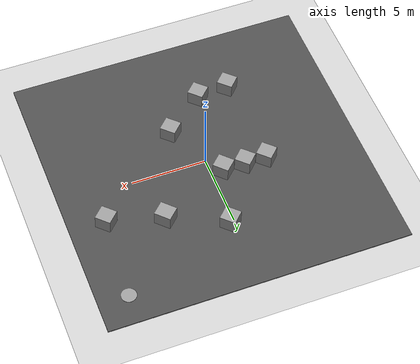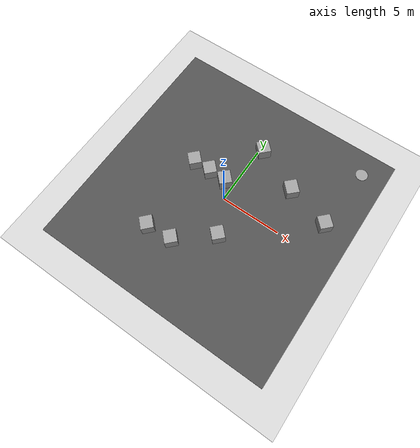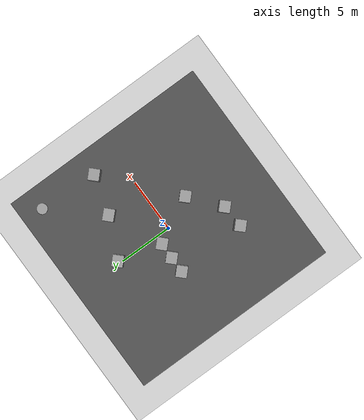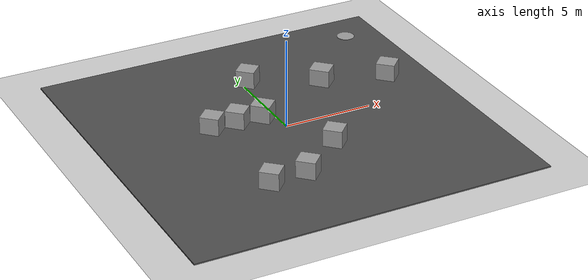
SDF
<sdf version="1.7">
 <world name="default">
  <light name="sun" type="directional">
   <pose>0 0 10 0 -0 0</pose>
   <diffuse>0.8 0.8 0.8 1</diffuse>
   <specular>0.2 0.2 0.2 1</specular>
   <attenuation>
    <range>1000</range>
    <constant>0.9</constant>
    <linear>0.01</linear>
    <quadratic>0.001</quadratic>
   </attenuation>
   <direction>-0.5 0.1 -0.9</direction>
   <spot><inner_angle>0</inner_angle><outer_angle>0</outer_angle><falloff>0</falloff></spot>
  </light>
  <model name="ground_plane">
   <static>1</static>
   <link name="link">
    <collision name="collision">
     <geometry><plane><normal>0 0 1</normal><size>100 100</size></plane></geometry>
     <surface><friction><ode><mu>100</mu><mu2>50</mu2></ode></friction></surface>
    </collision>
    <visual name="visual">
     <cast_shadows>0</cast_shadows>
     <geometry><plane><normal>0 0 1</normal><size>100 100</size></plane></geometry>
     <material>
      <script><uri>file://media/materials/scripts/gazebo.material</uri><name>Gazebo/Grey</name></script>
     </material>
    </visual>
    <velocity_decay><linear>0</linear><angular>0</angular></velocity_decay>
   </link>
  </model>
  <physics type="ode">
   <max_step_size>0.01</max_step_size>
   <real_time_factor>1</real_time_factor>
   <real_time_update_rate>100</real_time_update_rate>
  </physics>
  <scene><ambient>0.4 0.4 0.4 1</ambient><background>0.7 0.7 0.7 1</background><shadows>1</shadows></scene>
  <model name="asphalt_plane">
   <static>1</static>
   <link name="link">
    <collision name="collision"><geometry><box><size>20 20 0.1</size></box></geometry></collision>
    <visual name="visual">
     <cast_shadows>0</cast_shadows>
     <geometry><box><size>20 20 0.1</size></box></geometry>
     <material>
      <script>
       <uri>model://asphalt_plane/materials/scripts</uri>
       <uri>model://asphalt_plane/materials/textures</uri>
       <name>vrc/asphalt</name>
      </script>
     </material>
    </visual>
    <velocity_decay><linear>0</linear><angular>0</angular></velocity_decay>
   </link>
  </model>
  <gravity>0 0 -9.8</gravity>
  <magnetic_field>6e-06 2.3e-05 -4.2e-05</magnetic_field>
  <atmosphere type="adiabatic"/>
  <spherical_coordinates>
   <surface_model>EARTH_WGS84</surface_model>
   <latitude_deg>0</latitude_deg>
   <longitude_deg>0</longitude_deg>
   <elevation>0</elevation>
   <heading_deg>0</heading_deg>
  </spherical_coordinates>
  <model name="target">
   <link name="link">
    <inertial>
     <mass>1</mass>
     <inertia><ixx>0.145833</ixx><ixy>0</ixy><ixz>0</ixz><iyy>0.145833</iyy><iyz>0</iyz><izz>0.125</izz></inertia>
    </inertial>
    <visual name="visual">
     <geometry><cylinder><radius>0.5</radius><length>0.0238306</length></cylinder></geometry>
     <material>
      <script><name>Gazebo/Grey</name><uri>file://media/materials/scripts/gazebo.material</uri></script>
      <shader type="pixel"/>
     </material>
    </visual>
    <collision name="collision">
     <geometry><cylinder><radius>0.5</radius><length>0.023831</length></cylinder></geometry>
     <surface>
      <friction>
       <ode><mu>1</mu><mu2>1</mu2><fdir1>0 0 0</fdir1><slip1>0</slip1><slip2>0</slip2></ode>
       <torsional>
        <coefficient>1</coefficient>
        <patch_radius>0</patch_radius>
        <surface_radius>0</surface_radius>
        <use_patch_radius>1</use_patch_radius>
        <ode><slip>0</slip></ode>
       </torsional>
      </friction>
      <bounce><restitution_coefficient>0</restitution_coefficient><threshold>1e+06</threshold></bounce>
      <contact>
       <collide_without_contact>0</collide_without_contact>
       <collide_without_contact_bitmask>1</collide_without_contact_bitmask>
       <collide_bitmask>1</collide_bitmask>
       <ode>
        <soft_cfm>0</soft_cfm>
        <soft_erp>0.2</soft_erp>
        <kp>1e+13</kp>
        <kd>1</kd>
        <max_vel>0.01</max_vel>
        <min_depth>0</min_depth>
       </ode>
       <bullet>
        <split_impulse>1</split_impulse>
        <split_impulse_penetration_threshold>-0.01</split_impulse_penetration_threshold>
        <soft_cfm>0</soft_cfm>
        <soft_erp>0.2</soft_erp>
        <kp>1e+13</kp>
        <kd>1</kd>
       </bullet>
      </contact>
     </surface>
    </collision>
   </link>
   <static>1</static>
   <pose>7.99993 8.00005 0.061711 -0.000137 -0.000386 0.000976</pose>
  </model>
  <model name="obstacle0">
   <link name="link">
    <inertial>
     <mass>1</mass>
     <inertia>
      <ixx>0.166667</ixx>
      <ixy>0</ixy>
      <ixz>0</ixz>
      <iyy>0.166667</iyy>
      <iyz>0</iyz>
      <izz>0.166667</izz>
     </inertia>
    </inertial>
    <visual name="visual">
     <geometry><box><size>1.08347 1 1</size></box></geometry>
     <material>
      <script><name>Gazebo/Grey</name><uri>file://media/materials/scripts/gazebo.material</uri></script>
      <shader type="pixel"/>
     </material>
    </visual>
    <collision name="collision">
     <geometry><box><size>1.08347 1 1</size></box></geometry>
     <surface>
      <friction>
       <ode><mu>1</mu><mu2>1</mu2><fdir1>0 0 0</fdir1><slip1>0</slip1><slip2>0</slip2></ode>
       <torsional>
        <coefficient>1</coefficient>
        <patch_radius>0</patch_radius>
        <surface_radius>0</surface_radius>
        <use_patch_radius>1</use_patch_radius>
        <ode><slip>0</slip></ode>
       </torsional>
      </friction>
      <bounce><restitution_coefficient>0</restitution_coefficient><threshold>1e+06</threshold></bounce>
      <contact>
       <collide_without_contact>0</collide_without_contact>
       <collide_without_contact_bitmask>1</collide_without_contact_bitmask>
       <collide_bitmask>1</collide_bitmask>
       <ode>
        <soft_cfm>0</soft_cfm>
        <soft_erp>0.2</soft_erp>
        <kp>1e+13</kp>
        <kd>1</kd>
        <max_vel>0.01</max_vel>
        <min_depth>0</min_depth>
       </ode>
       <bullet>
        <split_impulse>1</split_impulse>
        <split_impulse_penetration_threshold>-0.01</split_impulse_penetration_threshold>
        <soft_cfm>0</soft_cfm>
        <soft_erp>0.2</soft_erp>
        <kp>1e+13</kp>
        <kd>1</kd>
       </bullet>
      </contact>
     </surface>
    </collision>
   </link>
   <static>1</static>
   <pose>-0.754963 1.23437 0.521268 0.01277 -0.012525 -0.795139</pose>
  </model>
  <model name="obstacle1">
   <link name="link">
    <inertial>
     <mass>1</mass>
     <inertia>
      <ixx>0.166667</ixx>
      <ixy>0</ixy>
      <ixz>0</ixz>
      <iyy>0.166667</iyy>
      <iyz>0</iyz>
      <izz>0.166667</izz>
     </inertia>
    </inertial>
    <visual name="visual">
     <geometry><box><size>1.05016 1 1</size></box></geometry>
     <material>
      <script><name>Gazebo/Grey</name><uri>file://media/materials/scripts/gazebo.material</uri></script>
      <shader type="pixel"/>
     </material>
    </visual>
    <collision name="collision">
     <geometry><box><size>1.05016 1 1</size></box></geometry>
     <surface>
      <friction>
       <ode><mu>1</mu><mu2>1</mu2><fdir1>0 0 0</fdir1><slip1>0</slip1><slip2>0</slip2></ode>
       <torsional>
        <coefficient>1</coefficient>
        <patch_radius>0</patch_radius>
        <surface_radius>0</surface_radius>
        <use_patch_radius>1</use_patch_radius>
        <ode><slip>0</slip></ode>
       </torsional>
      </friction>
      <bounce><restitution_coefficient>0</restitution_coefficient><threshold>1e+06</threshold></bounce>
      <contact>
       <collide_without_contact>0</collide_without_contact>
       <collide_without_contact_bitmask>1</collide_without_contact_bitmask>
       <collide_bitmask>1</collide_bitmask>
       <ode>
        <soft_cfm>0</soft_cfm>
        <soft_erp>0.2</soft_erp>
        <kp>1e+13</kp>
        <kd>1</kd>
        <max_vel>0.01</max_vel>
        <min_depth>0</min_depth>
       </ode>
       <bullet>
        <split_impulse>1</split_impulse>
        <split_impulse_penetration_threshold>-0.01</split_impulse_penetration_threshold>
        <soft_cfm>0</soft_cfm>
        <soft_erp>0.2</soft_erp>
        <kp>1e+13</kp>
        <kd>1</kd>
       </bullet>
      </contact>
     </surface>
    </collision>
   </link>
   <static>1</static>
   <pose>-3.71083 1.28242 0.521268 0.012546 -0.012751 -0.777295</pose>
  </model>
  <model name="obstacle2">
   <link name="link">
    <inertial>
     <mass>1</mass>
     <inertia>
      <ixx>0.166667</ixx>
      <ixy>0</ixy>
      <ixz>0</ixz>
      <iyy>0.166667</iyy>
      <iyz>0</iyz>
      <izz>0.166667</izz>
     </inertia>
    </inertial>
    <visual name="visual">
     <geometry><box><size>1.05659 1 1</size></box></geometry>
     <material>
      <script><name>Gazebo/Grey</name><uri>file://media/materials/scripts/gazebo.material</uri></script>
      <shader type="pixel"/>
     </material>
    </visual>
    <collision name="collision">
     <geometry><box><size>1.05659 1 1</size></box></geometry>
     <surface>
      <friction>
       <ode><mu>1</mu><mu2>1</mu2><fdir1>0 0 0</fdir1><slip1>0</slip1><slip2>0</slip2></ode>
       <torsional>
        <coefficient>1</coefficient>
        <patch_radius>0</patch_radius>
        <surface_radius>0</surface_radius>
        <use_patch_radius>1</use_patch_radius>
        <ode><slip>0</slip></ode>
       </torsional>
      </friction>
      <bounce><restitution_coefficient>0</restitution_coefficient><threshold>1e+06</threshold></bounce>
      <contact>
       <collide_without_contact>0</collide_without_contact>
       <collide_without_contact_bitmask>1</collide_without_contact_bitmask>
       <collide_bitmask>1</collide_bitmask>
       <ode>
        <soft_cfm>0</soft_cfm>
        <soft_erp>0.2</soft_erp>
        <kp>1e+13</kp>
        <kd>1</kd>
        <max_vel>0.01</max_vel>
        <min_depth>0</min_depth>
       </ode>
       <bullet>
        <split_impulse>1</split_impulse>
        <split_impulse_penetration_threshold>-0.01</split_impulse_penetration_threshold>
        <soft_cfm>0</soft_cfm>
        <soft_erp>0.2</soft_erp>
        <kp>1e+13</kp>
        <kd>1</kd>
       </bullet>
      </contact>
     </surface>
    </collision>
   </link>
   <static>1</static>
   <pose>-3.5 -5.2 0.521268 0.012367 -0.012924 -0.76345</pose>
  </model>
  <model name="obstacle3">
   <link name="link">
    <inertial>
     <mass>1</mass>
     <inertia>
      <ixx>0.166667</ixx>
      <ixy>0</ixy>
      <ixz>0</ixz>
      <iyy>0.166667</iyy>
      <iyz>0</iyz>
      <izz>0.166667</izz>
     </inertia>
    </inertial>
    <visual name="visual">
     <geometry><box><size>1.11958 1 1</size></box></geometry>
     <material>
      <script><name>Gazebo/Grey</name><uri>file://media/materials/scripts/gazebo.material</uri></script>
      <shader type="pixel"/>
     </material>
    </visual>
    <collision name="collision">
     <geometry><box><size>1.11958 1 1</size></box></geometry>
     <surface>
      <friction>
       <ode><mu>1</mu><mu2>1</mu2><fdir1>0 0 0</fdir1><slip1>0</slip1><slip2>0</slip2></ode>
       <torsional>
        <coefficient>1</coefficient>
        <patch_radius>0</patch_radius>
        <surface_radius>0</surface_radius>
        <use_patch_radius>1</use_patch_radius>
        <ode><slip>0</slip></ode>
       </torsional>
      </friction>
      <bounce><restitution_coefficient>0</restitution_coefficient><threshold>1e+06</threshold></bounce>
      <contact>
       <collide_without_contact>0</collide_without_contact>
       <collide_without_contact_bitmask>1</collide_without_contact_bitmask>
       <collide_bitmask>1</collide_bitmask>
       <ode>
        <soft_cfm>0</soft_cfm>
        <soft_erp>0.2</soft_erp>
        <kp>1e+13</kp>
        <kd>1</kd>
        <max_vel>0.01</max_vel>
        <min_depth>0</min_depth>
       </ode>
       <bullet>
        <split_impulse>1</split_impulse>
        <split_impulse_penetration_threshold>-0.01</split_impulse_penetration_threshold>
        <soft_cfm>0</soft_cfm>
        <soft_erp>0.2</soft_erp>
        <kp>1e+13</kp>
        <kd>1</kd>
       </bullet>
      </contact>
     </surface>
    </collision>
   </link>
   <static>1</static>
   <pose>4 3.5 0.521268 0.012769 -0.012526 -0.795052</pose>
  </model>
  <model name="obstacle4">
   <link name="link">
    <inertial>
     <mass>1</mass>
     <inertia>
      <ixx>0.166667</ixx>
      <ixy>0</ixy>
      <ixz>0</ixz>
      <iyy>0.166667</iyy>
      <iyz>0</iyz>
      <izz>0.166667</izz>
     </inertia>
    </inertial>
    <visual name="visual">
     <geometry><box><size>1.05016 1 1</size></box></geometry>
     <material>
      <script><name>Gazebo/Grey</name><uri>file://media/materials/scripts/gazebo.material</uri></script>
      <shader type="pixel"/>
     </material>
    </visual>
    <collision name="collision">
     <geometry><box><size>1.05016 1 1</size></box></geometry>
     <surface>
      <friction>
       <ode><mu>1</mu><mu2>1</mu2><fdir1>0 0 0</fdir1><slip1>0</slip1><slip2>0</slip2></ode>
       <torsional>
        <coefficient>1</coefficient>
        <patch_radius>0</patch_radius>
        <surface_radius>0</surface_radius>
        <use_patch_radius>1</use_patch_radius>
        <ode><slip>0</slip></ode>
       </torsional>
      </friction>
      <bounce><restitution_coefficient>0</restitution_coefficient><threshold>1e+06</threshold></bounce>
      <contact>
       <collide_without_contact>0</collide_without_contact>
       <collide_without_contact_bitmask>1</collide_without_contact_bitmask>
       <collide_bitmask>1</collide_bitmask>
       <ode>
        <soft_cfm>0</soft_cfm>
        <soft_erp>0.2</soft_erp>
        <kp>1e+13</kp>
        <kd>1</kd>
        <max_vel>0.01</max_vel>
        <min_depth>0</min_depth>
       </ode>
       <bullet>
        <split_impulse>1</split_impulse>
        <split_impulse_penetration_threshold>-0.01</split_impulse_penetration_threshold>
        <soft_cfm>0</soft_cfm>
        <soft_erp>0.2</soft_erp>
        <kp>1e+13</kp>
        <kd>1</kd>
       </bullet>
      </contact>
     </surface>
    </collision>
   </link>
   <static>1</static>
   <pose>-2.23305 1.27544 0.521268 0.012546 -0.012751 -0.777295</pose>
  </model>
  <model name="obstacle5">
   <link name="link">
    <inertial>
     <mass>1</mass>
     <inertia>
      <ixx>0.166667</ixx>
      <ixy>0</ixy>
      <ixz>0</ixz>
      <iyy>0.166667</iyy>
      <iyz>0</iyz>
      <izz>0.166667</izz>
     </inertia>
    </inertial>
    <visual name="visual">
     <geometry><box><size>1.05016 1 1</size></box></geometry>
     <material>
      <script><name>Gazebo/Grey</name><uri>file://media/materials/scripts/gazebo.material</uri></script>
      <shader type="pixel"/>
     </material>
    </visual>
    <collision name="collision">
     <geometry><box><size>1.05016 1 1</size></box></geometry>
     <surface>
      <friction>
       <ode><mu>1</mu><mu2>1</mu2><fdir1>0 0 0</fdir1><slip1>0</slip1><slip2>0</slip2></ode>
       <torsional>
        <coefficient>1</coefficient>
        <patch_radius>0</patch_radius>
        <surface_radius>0</surface_radius>
        <use_patch_radius>1</use_patch_radius>
        <ode><slip>0</slip></ode>
       </torsional>
      </friction>
      <bounce><restitution_coefficient>0</restitution_coefficient><threshold>1e+06</threshold></bounce>
      <contact>
       <collide_without_contact>0</collide_without_contact>
       <collide_without_contact_bitmask>1</collide_without_contact_bitmask>
       <collide_bitmask>1</collide_bitmask>
       <ode>
        <soft_cfm>0</soft_cfm>
        <soft_erp>0.2</soft_erp>
        <kp>1e+13</kp>
        <kd>1</kd>
        <max_vel>0.01</max_vel>
        <min_depth>0</min_depth>
       </ode>
       <bullet>
        <split_impulse>1</split_impulse>
        <split_impulse_penetration_threshold>-0.01</split_impulse_penetration_threshold>
        <soft_cfm>0</soft_cfm>
        <soft_erp>0.2</soft_erp>
        <kp>1e+13</kp>
        <kd>1</kd>
       </bullet>
      </contact>
     </surface>
    </collision>
   </link>
   <static>1</static>
   <pose>-1.36536 -5.07093 0.521268 0.012546 -0.012751 -0.777295</pose>
  </model>
  <model name="obstacle6">
   <link name="link">
    <inertial>
     <mass>1</mass>
     <inertia>
      <ixx>0.166667</ixx>
      <ixy>0</ixy>
      <ixz>0</ixz>
      <iyy>0.166667</iyy>
      <iyz>0</iyz>
      <izz>0.166667</izz>
     </inertia>
    </inertial>
    <visual name="visual">
     <geometry><box><size>1.05016 1 1</size></box></geometry>
     <material>
      <script><name>Gazebo/Grey</name><uri>file://media/materials/scripts/gazebo.material</uri></script>
      <shader type="pixel"/>
     </material>
    </visual>
    <collision name="collision">
     <geometry><box><size>1.05016 1 1</size></box></geometry>
     <surface>
      <friction>
       <ode><mu>1</mu><mu2>1</mu2><fdir1>0 0 0</fdir1><slip1>0</slip1><slip2>0</slip2></ode>
       <torsional>
        <coefficient>1</coefficient>
        <patch_radius>0</patch_radius>
        <surface_radius>0</surface_radius>
        <use_patch_radius>1</use_patch_radius>
        <ode><slip>0</slip></ode>
       </torsional>
      </friction>
      <bounce><restitution_coefficient>0</restitution_coefficient><threshold>1e+06</threshold></bounce>
      <contact>
       <collide_without_contact>0</collide_without_contact>
       <collide_without_contact_bitmask>1</collide_without_contact_bitmask>
       <collide_bitmask>1</collide_bitmask>
       <ode>
        <soft_cfm>0</soft_cfm>
        <soft_erp>0.2</soft_erp>
        <kp>1e+13</kp>
        <kd>1</kd>
        <max_vel>0.01</max_vel>
        <min_depth>0</min_depth>
       </ode>
       <bullet>
        <split_impulse>1</split_impulse>
        <split_impulse_penetration_threshold>-0.01</split_impulse_penetration_threshold>
        <soft_cfm>0</soft_cfm>
        <soft_erp>0.2</soft_erp>
        <kp>1e+13</kp>
        <kd>1</kd>
       </bullet>
      </contact>
     </surface>
    </collision>
   </link>
   <static>1</static>
   <pose>1.37975 -2.83269 0.521268 0.012546 -0.012751 -0.777295</pose>
  </model>
  <model name="obstacle7">
   <link name="link">
    <inertial>
     <mass>1</mass>
     <inertia>
      <ixx>0.166667</ixx>
      <ixy>0</ixy>
      <ixz>0</ixz>
      <iyy>0.166667</iyy>
      <iyz>0</iyz>
      <izz>0.166667</izz>
     </inertia>
    </inertial>
    <visual name="visual">
     <geometry><box><size>1.05016 1 1</size></box></geometry>
     <material>
      <script><name>Gazebo/Grey</name><uri>file://media/materials/scripts/gazebo.material</uri></script>
      <shader type="pixel"/>
     </material>
    </visual>
    <collision name="collision">
     <geometry><box><size>1.05016 1 1</size></box></geometry>
     <surface>
      <friction>
       <ode><mu>1</mu><mu2>1</mu2><fdir1>0 0 0</fdir1><slip1>0</slip1><slip2>0</slip2></ode>
       <torsional>
        <coefficient>1</coefficient>
        <patch_radius>0</patch_radius>
        <surface_radius>0</surface_radius>
        <use_patch_radius>1</use_patch_radius>
        <ode><slip>0</slip></ode>
       </torsional>
      </friction>
      <bounce><restitution_coefficient>0</restitution_coefficient><threshold>1e+06</threshold></bounce>
      <contact>
       <collide_without_contact>0</collide_without_contact>
       <collide_without_contact_bitmask>1</collide_without_contact_bitmask>
       <collide_bitmask>1</collide_bitmask>
       <ode>
        <soft_cfm>0</soft_cfm>
        <soft_erp>0.2</soft_erp>
        <kp>1e+13</kp>
        <kd>1</kd>
        <max_vel>0.01</max_vel>
        <min_depth>0</min_depth>
       </ode>
       <bullet>
        <split_impulse>1</split_impulse>
        <split_impulse_penetration_threshold>-0.01</split_impulse_penetration_threshold>
        <soft_cfm>0</soft_cfm>
        <soft_erp>0.2</soft_erp>
        <kp>1e+13</kp>
        <kd>1</kd>
       </bullet>
      </contact>
     </surface>
    </collision>
   </link>
   <static>1</static>
   <pose>0.311165 5.22468 0.521268 0.012546 -0.012751 -0.777295</pose>
  </model>
  <model name="obstacle8">
   <link name="link">
    <inertial>
     <mass>1</mass>
     <inertia>
      <ixx>0.166667</ixx>
      <ixy>0</ixy>
      <ixz>0</ixz>
      <iyy>0.166667</iyy>
      <iyz>0</iyz>
      <izz>0.166667</izz>
     </inertia>
    </inertial>
    <visual name="visual">
     <geometry><box><size>1.05016 1 1</size></box></geometry>
     <material>
      <script><name>Gazebo/Grey</name><uri>file://media/materials/scripts/gazebo.material</uri></script>
      <shader type="pixel"/>
     </material>
    </visual>
    <collision name="collision">
     <geometry><box><size>1.05016 1 1</size></box></geometry>
     <surface>
      <friction>
       <ode><mu>1</mu><mu2>1</mu2><fdir1>0 0 0</fdir1><slip1>0</slip1><slip2>0</slip2></ode>
       <torsional>
        <coefficient>1</coefficient>
        <patch_radius>0</patch_radius>
        <surface_radius>0</surface_radius>
        <use_patch_radius>1</use_patch_radius>
        <ode><slip>0</slip></ode>
       </torsional>
      </friction>
      <bounce><restitution_coefficient>0</restitution_coefficient><threshold>1e+06</threshold></bounce>
      <contact>
       <collide_without_contact>0</collide_without_contact>
       <collide_without_contact_bitmask>1</collide_without_contact_bitmask>
       <collide_bitmask>1</collide_bitmask>
       <ode>
        <soft_cfm>0</soft_cfm>
        <soft_erp>0.2</soft_erp>
        <kp>1e+13</kp>
        <kd>1</kd>
        <max_vel>0.01</max_vel>
        <min_depth>0</min_depth>
       </ode>
       <bullet>
        <split_impulse>1</split_impulse>
        <split_impulse_penetration_threshold>-0.01</split_impulse_penetration_threshold>
        <soft_cfm>0</soft_cfm>
        <soft_erp>0.2</soft_erp>
        <kp>1e+13</kp>
        <kd>1</kd>
       </bullet>
      </contact>
     </surface>
    </collision>
   </link>
   <static>1</static>
   <pose>7.57624 2.45771 0.521268 0.012546 -0.012751 -0.777295</pose>
  </model>
 </world>
</sdf>
